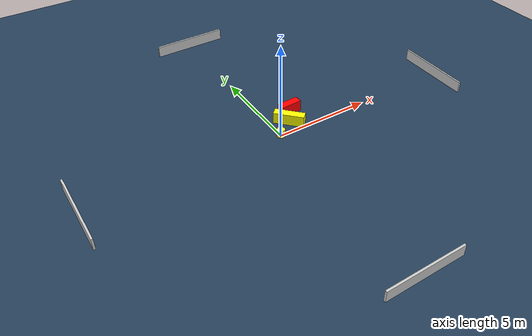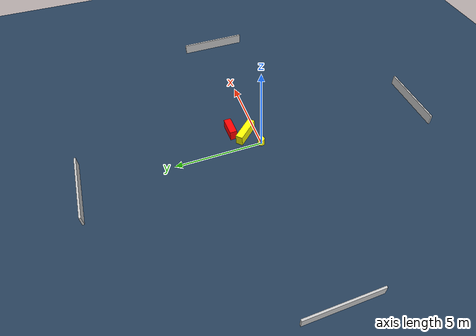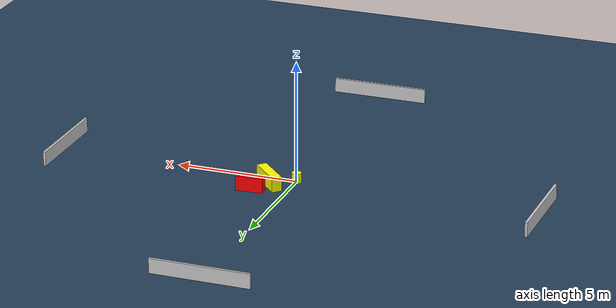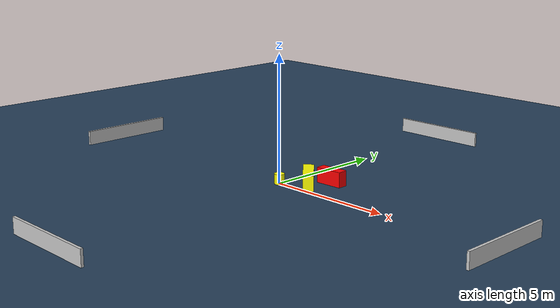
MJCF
<?xml version="1.0" ?>
<mujoco model="generated_environment">
  <option timestep="0.01" integrator="RK4" cone="elliptic"/>
  <default>
    <geom density="1"/>
  </default>
  <asset>
    <texture builtin="gradient" height="3072" name="skybox" rgb1="0.3 0.5 0.7" rgb2="0 0 0" type="skybox" width="512"/>
    <texture builtin="checker" height="300" name="groundplane" rgb1="0.2 0.3 0.4" rgb2="0.1 0.2 0.3" type="2d" width="300"/>
    <material name="groundplane" reflectance="0.2" texrepeat="5 5" texture="groundplane"/>
  </asset>
  <worldbody>
    <light dir="0 0 -1" directional="true" pos="0 0 1.5"/>
    <geom condim="3" friction="0.5 0.005 0.001" material="groundplane" name="floor" pos="0 0 0" size="0 0 0.05" type="plane"/>
    <body name="walls">
      <geom name="wall_1" condim="4" pos="-10.0 0.0 0.3" rgba="0.800000011920929 0.800000011920929 0.800000011920929 1.0" size="0.05 2.0 0.3" type="box"/>
      <geom name="wall_2" condim="4" pos="10.0 0.0 0.3" rgba="0.800000011920929 0.800000011920929 0.800000011920929 1.0" size="0.05 2.0 0.3" type="box"/>
      <geom name="wall_3" condim="4" pos="0.0 -10.0 0.3" rgba="0.800000011920929 0.800000011920929 0.800000011920929 1.0" size="2.0 0.05 0.3" type="box"/>
      <geom name="wall_4" condim="4" pos="0.0 10.0 0.3" rgba="0.800000011920929 0.800000011920929 0.800000011920929 1.0" size="2.0 0.05 0.3" type="box"/>
    </body>
    <body name="robot">
      <joint name="joint_x" type="slide" pos="0 0 0" axis="1 0 0"/>
      <joint name="joint_y" type="slide" pos="0 0 0" axis="0 1 0"/>
      <geom name="robot" type="cylinder" pos="0.0 0.0 0.2" size="0.2 0.2 0.0" mass="5.0" friction="1.0 0.005 0.0001" condim="4" rgba="1.0 1.0 0.0 1.0"/>
    </body>
    <body name="obstacle_1_movable">
      <geom name="obstacle_1_movable" condim="4" pos="0.9073673359349672 0.6424699271422397 0.3" euler="0 0 133.6041434828727" friction="0.0 0.005 0.001" rgba="1.0 1.0 0.0 1.0" size="0.7759359019847354 0.20727353884516678 0.3" type="box" mass="0.1"/>
      <joint type="free"/>
    </body>
    <body name="obstacle_2_static">
      <geom name="obstacle_2_static" condim="4" pos="1.4121085054239457 1.3903596879948739 0.3" euler="0 0 182.26321036568734" friction="0.0 0.005 0.001" rgba="1.0 0.0 0.0 1.0" size="0.5553375640552779 0.20333101588584201 0.3" type="box"/>
    </body>
  </worldbody>
  <actuator>
    <motor name="actuator_x" joint="joint_x" gear="1" ctrlrange="-1 1"/>
    <motor name="actuator_y" joint="joint_y" gear="1" ctrlrange="-1 1"/>
  </actuator>
</mujoco>
